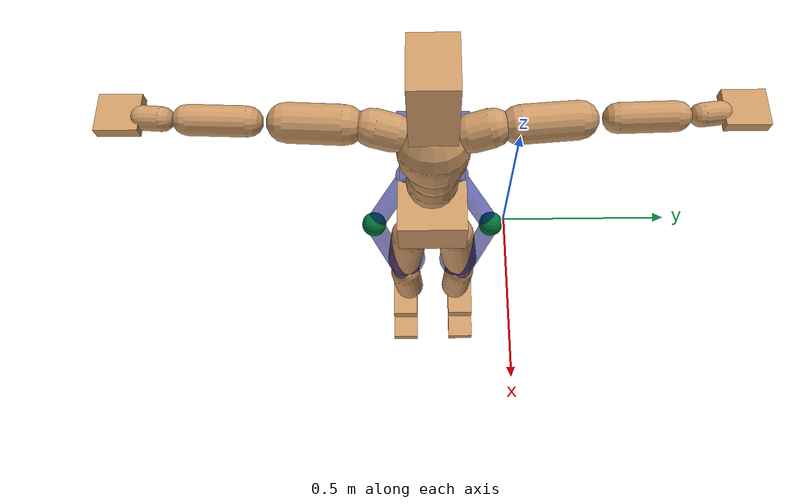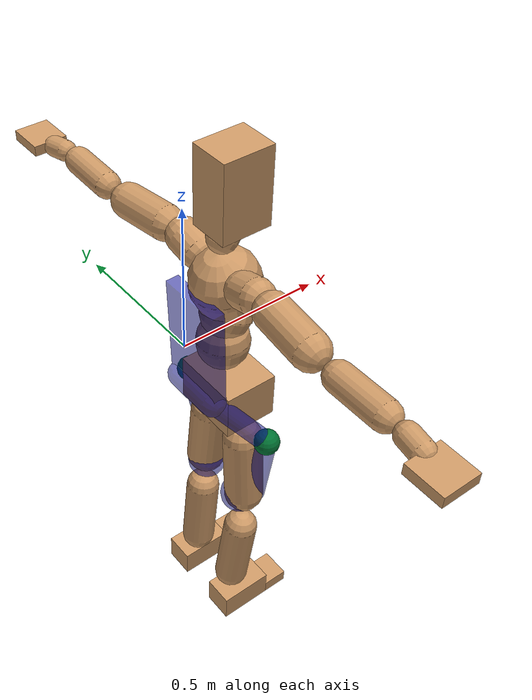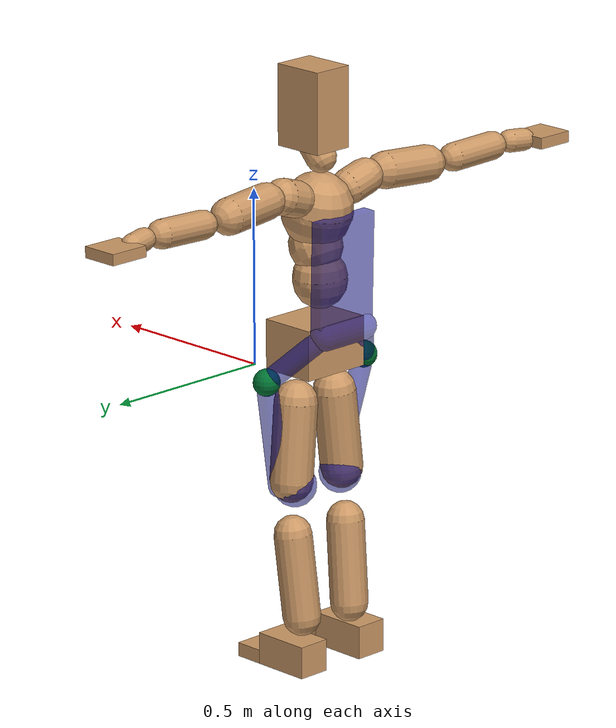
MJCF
<mujoco model="humanoid">
  <compiler coordinate="local" />
  <asset>
    <texture type="skybox" builtin="gradient" rgb1=".4 .5 .6" rgb2="0 0 0" width="100" height="100" />
    <texture builtin="flat" height="1278" mark="cross" markrgb="1 1 1" name="texgeom" random="0.01" rgb1="0.8 0.6 0.4" rgb2="0.8 0.6 0.4" type="cube" width="127" />
    <texture builtin="checker" height="100" name="texplane" rgb1="0 0 0" rgb2="0.8 0.8 0.8" type="2d" width="100" />
    <material name="MatPlane" reflectance="0.5" shininess="1" specular="1" texrepeat="60 60" texture="texplane" />
    <material name="geom" texture="texgeom" texuniform="true" />
  </asset>
  <worldbody>
    <light cutoff="100" diffuse="1 1 1" dir="-0 0 -1.3" directional="true" exponent="1" pos="0 0 1.3" specular=".1 .1 .1" />
    <body name="Pelvis" pos="-0.0018 -0.2233 0.0282">
      <geom type="box" pos="-0.0055 -0.0000 -0.0121" size="0.0830 0.1069 0.0722" quat="1.0000 0.0000 0.0000 0.0000" density="1000" conaffinity="1" condim="3" contype="7" margin="0.001" rgba="0.8 0.6 .4 1" />
      <body name="L_Hip" pos="-0.0068 0.0695 -0.0914">
        <joint name="L_Hip_x" type="hinge" pos="0 0 0" axis="1 0 0" stiffness="800" damping="80" armature="0.02" range="-180.0000 180.0000" limited="true" />
        <joint name="L_Hip_y" type="hinge" pos="0 0 0" axis="0 1 0" stiffness="800" damping="80" armature="0.02" range="-180.0000 180.0000" limited="true" />
        <joint name="L_Hip_z" type="hinge" pos="0 0 0" axis="0 0 1" stiffness="800" damping="80" armature="0.02" range="-180.0000 180.0000" limited="true" />
        <geom type="capsule" contype="1" conaffinity="1" density="2040.816327" fromto="-0.0009 0.0069 -0.0750 -0.0036 0.0274 -0.3002" size="0.0615" condim="3" margin="0.001" rgba="0.8 0.6 .4 1" />
        <body name="L_Knee" pos="-0.0045 0.0343 -0.3752">
          <joint name="L_Knee_x" type="hinge" pos="0 0 0" axis="1 0 0" stiffness="800" damping="80" armature="0.02" range="-180.0000 180.0000" limited="true" />
          <joint name="L_Knee_y" type="hinge" pos="0 0 0" axis="0 1 0" stiffness="800" damping="80" armature="0.02" range="-180.0000 180.0000" limited="true" />
          <joint name="L_Knee_z" type="hinge" pos="0 0 0" axis="0 0 1" stiffness="800" damping="80" armature="0.02" range="-180.0000 180.0000" limited="true" />
          <geom type="capsule" contype="1" conaffinity="1" density="1234.567901" fromto="-0.0087 -0.0027 -0.0796 -0.0350 -0.0109 -0.3184" size="0.0541" condim="3" margin="0.001" rgba="0.8 0.6 .4 1" />
          <body name="L_Ankle" pos="-0.0437 -0.0136 -0.3980">
            <joint name="L_Ankle_x" type="hinge" pos="0 0 0" axis="1 0 0" stiffness="800" damping="80" armature="0.02" range="-180.0000 180.0000" limited="true" />
            <joint name="L_Ankle_y" type="hinge" pos="0 0 0" axis="0 1 0" stiffness="800" damping="80" armature="0.02" range="-180.0000 180.0000" limited="true" />
            <joint name="L_Ankle_z" type="hinge" pos="0 0 0" axis="0 0 1" stiffness="800" damping="80" armature="0.02" range="-180.0000 180.0000" limited="true" />
            <geom type="box" pos="0.0242 0.0233 -0.0239" size="0.0850 0.0483 0.0464" quat="1.0000 0.0000 0.0000 0.0000" density="1000" conaffinity="1" condim="3" contype="7" margin="0.001" rgba="0.8 0.6 .4 1" />
            <body name="L_Toe" pos="0.1193 0.0264 -0.0558">
              <joint name="L_Toe_x" type="hinge" pos="0 0 0" axis="1 0 0" stiffness="500" damping="50" armature="0.02" range="-5.0000 5.0000" limited="true" />
              <joint name="L_Toe_y" type="hinge" pos="0 0 0" axis="0 1 0" stiffness="500" damping="50" armature="0.02" range="-5.0000 5.0000" limited="true" />
              <joint name="L_Toe_z" type="hinge" pos="0 0 0" axis="0 0 1" stiffness="500" damping="50" armature="0.02" range="-5.0000 5.0000" limited="true" />
              <geom type="box" pos="0.0248 -0.0030 0.0055" size="0.0496 0.0478 0.0200" quat="1.0000 0.0000 0.0000 0.0000" density="1000" conaffinity="1" condim="3" contype="7" margin="0.001" rgba="0.8 0.6 .4 1" />
            </body>
          </body>
        </body>
        <geom name="left_hip_motor" type="sphere" size="0.0385" pos="-0.000469 0.118289 0.005255" mass="0.53" contype="0" conaffinity="0" rgba="0.0 0.45 0.2 1" />
        <geom name="left_thigh_box" type="capsule" fromto="0.002551 0.111331 -0.023770 0.033895 0.039115 -0.325029" size="0.030" mass="0.1977" contype="0" conaffinity="0" rgba="0.0 0.0 0.55 0.55" />
        <geom name="left_hip_ring" type="sphere" pos="-0.007284 0.017379 -0.315218" size="0.061500" mass="0.0923" contype="0" conaffinity="0" rgba="0.0 0.0 0.55 0.55" />
      </body>
      <body name="R_Hip" pos="-0.0043 -0.0677 -0.0905">
        <joint name="R_Hip_x" type="hinge" pos="0 0 0" axis="1 0 0" stiffness="800" damping="80" armature="0.02" range="-180.0000 180.0000" limited="true" />
        <joint name="R_Hip_y" type="hinge" pos="0 0 0" axis="0 1 0" stiffness="800" damping="80" armature="0.02" range="-180.0000 180.0000" limited="true" />
        <joint name="R_Hip_z" type="hinge" pos="0 0 0" axis="0 0 1" stiffness="800" damping="80" armature="0.02" range="-180.0000 180.0000" limited="true" />
        <geom type="capsule" contype="1" conaffinity="1" density="2040.816327" fromto="-0.0018 -0.0077 -0.0765 -0.0071 -0.0306 -0.3061" size="0.0606" condim="3" margin="0.001" rgba="0.8 0.6 .4 1" />
        <body name="R_Knee" pos="-0.0089 -0.0383 -0.3826">
          <joint name="R_Knee_x" type="hinge" pos="0 0 0" axis="1 0 0" stiffness="800" damping="80" armature="0.02" range="-180.0000 180.0000" limited="true" />
          <joint name="R_Knee_y" type="hinge" pos="0 0 0" axis="0 1 0" stiffness="800" damping="80" armature="0.02" range="-180.0000 180.0000" limited="true" />
          <joint name="R_Knee_z" type="hinge" pos="0 0 0" axis="0 0 1" stiffness="800" damping="80" armature="0.02" range="-180.0000 180.0000" limited="true" />
          <geom type="capsule" contype="1" conaffinity="1" density="1234.567901" fromto="-0.0085 0.0032 -0.0797 -0.0338 0.0126 -0.3187" size="0.0541" condim="3" margin="0.001" rgba="0.8 0.6 .4 1" />
          <body name="R_Ankle" pos="-0.0423 0.0158 -0.3984">
            <joint name="R_Ankle_x" type="hinge" pos="0 0 0" axis="1 0 0" stiffness="800" damping="80" armature="0.02" range="-180.0000 180.0000" limited="true" />
            <joint name="R_Ankle_y" type="hinge" pos="0 0 0" axis="0 1 0" stiffness="800" damping="80" armature="0.02" range="-180.0000 180.0000" limited="true" />
            <joint name="R_Ankle_z" type="hinge" pos="0 0 0" axis="0 0 1" stiffness="800" damping="80" armature="0.02" range="-180.0000 180.0000" limited="true" />
            <geom type="box" pos="0.0256 -0.0212 -0.0174" size="0.0865 0.0483 0.0478" quat="1.0000 0.0000 0.0000 0.0000" density="1000" conaffinity="1" condim="3" contype="7" margin="0.001" rgba="0.8 0.6 .4 1" />
            <body name="R_Toe" pos="0.1233 -0.0254 -0.0481">
              <joint name="R_Toe_x" type="hinge" pos="0 0 0" axis="1 0 0" stiffness="500" damping="50" armature="0.02" range="-5.0000 5.0000" limited="true" />
              <joint name="R_Toe_y" type="hinge" pos="0 0 0" axis="0 1 0" stiffness="500" damping="50" armature="0.02" range="-5.0000 5.0000" limited="true" />
              <joint name="R_Toe_z" type="hinge" pos="0 0 0" axis="0 0 1" stiffness="500" damping="50" armature="0.02" range="-5.0000 5.0000" limited="true" />
              <geom type="box" pos="0.0227 0.0042 0.0045" size="0.0493 0.0479 0.0216" quat="1.0000 0.0000 0.0000 0.0000" density="1000" conaffinity="1" condim="3" contype="7" margin="0.001" rgba="0.8 0.6 .4 1" />
            </body>
          </body>
        </body>
        <geom name="right_hip_motor" type="sphere" size="0.0385" pos="-0.005199 -0.119211 0.003827" mass="0.53" contype="0" conaffinity="0" rgba="0.0 0.45 0.2 1" />
        <geom name="right_thigh_box" type="capsule" fromto="-0.002132 -0.112377 -0.025223 0.029619 -0.041620 -0.325993" size="0.030" mass="0.1977" contype="0" conaffinity="0" rgba="0.0 0.0 0.55 0.55" />
        <geom name="right_hip_ring" type="sphere" pos="-0.013104 -0.018825 -0.316393" size="0.060600" mass="0.0923" contype="0" conaffinity="0" rgba="0.0 0.0 0.55 0.55" />
      </body>
      <body name="Torso" pos="-0.0267 -0.0025 0.1090">
        <joint name="Torso_x" type="hinge" pos="0 0 0" axis="1 0 0" stiffness="1000" damping="100" armature="0.02" range="-180.0000 180.0000" limited="true" />
        <joint name="Torso_y" type="hinge" pos="0 0 0" axis="0 1 0" stiffness="1000" damping="100" armature="0.02" range="-180.0000 180.0000" limited="true" />
        <joint name="Torso_z" type="hinge" pos="0 0 0" axis="0 0 1" stiffness="1000" damping="100" armature="0.02" range="-180.0000 180.0000" limited="true" />
        <geom type="capsule" contype="1" conaffinity="1" density="2040.816327" fromto="0.0005 0.0025 0.0608 0.0006 0.0030 0.0743" size="0.0769" condim="3" margin="0.001" rgba="0.8 0.6 .4 1" />
        <body name="Spine" pos="0.0011 0.0055 0.1352">
          <joint name="Spine_x" type="hinge" pos="0 0 0" axis="1 0 0" stiffness="1000" damping="100" armature="0.02" range="-180.0000 180.0000" limited="true" />
          <joint name="Spine_y" type="hinge" pos="0 0 0" axis="0 1 0" stiffness="1000" damping="100" armature="0.02" range="-180.0000 180.0000" limited="true" />
          <joint name="Spine_z" type="hinge" pos="0 0 0" axis="0 0 1" stiffness="1000" damping="100" armature="0.02" range="-180.0000 180.0000" limited="true" />
          <geom type="capsule" contype="1" conaffinity="1" density="2040.816327" fromto="0.0114 0.0007 0.0238 0.0140 0.0008 0.0291" size="0.0755" condim="3" margin="0.001" rgba="0.8 0.6 .4 1" />
          <body name="Chest" pos="0.0254 0.0015 0.0529">
            <joint name="Chest_x" type="hinge" pos="0 0 0" axis="1 0 0" stiffness="1000" damping="100" armature="0.02" range="-180.0000 180.0000" limited="true" />
            <joint name="Chest_y" type="hinge" pos="0 0 0" axis="0 1 0" stiffness="1000" damping="100" armature="0.02" range="-180.0000 180.0000" limited="true" />
            <joint name="Chest_z" type="hinge" pos="0 0 0" axis="0 0 1" stiffness="1000" damping="100" armature="0.02" range="-180.0000 180.0000" limited="true" />
            <geom type="capsule" contype="1" conaffinity="1" density="2040.816327" fromto="-0.0173 -0.0009 0.0682 -0.0212 -0.0010 0.0833" size="0.1002" condim="3" margin="0.001" rgba="0.8 0.6 .4 1" />
            <body name="Neck" pos="-0.0429 -0.0028 0.2139">
              <joint name="Neck_x" type="hinge" pos="0 0 0" axis="1 0 0" stiffness="500" damping="50" armature="0.02" range="-180.0000 180.0000" limited="true" />
              <joint name="Neck_y" type="hinge" pos="0 0 0" axis="0 1 0" stiffness="500" damping="50" armature="0.02" range="-180.0000 180.0000" limited="true" />
              <joint name="Neck_z" type="hinge" pos="0 0 0" axis="0 0 1" stiffness="500" damping="50" armature="0.02" range="-180.0000 180.0000" limited="true" />
              <geom type="capsule" contype="1" conaffinity="1" density="1000" fromto="0.0103 0.0010 0.0130 0.0411 0.0041 0.0520" size="0.0436" condim="3" margin="0.001" rgba="0.8 0.6 .4 1" />
              <body name="Head" pos="0.0513 0.0052 0.0650">
                <joint name="Head_x" type="hinge" pos="0 0 0" axis="1 0 0" stiffness="500" damping="50" armature="0.02" range="-180.0000 180.0000" limited="true" />
                <joint name="Head_y" type="hinge" pos="0 0 0" axis="0 1 0" stiffness="500" damping="50" armature="0.02" range="-180.0000 180.0000" limited="true" />
                <joint name="Head_z" type="hinge" pos="0 0 0" axis="0 0 1" stiffness="500" damping="50" armature="0.02" range="-180.0000 180.0000" limited="true" />
                <geom type="box" pos="-0.0116 -0.0042 0.0876" size="0.0760 0.0606 0.1154" quat="1.0000 0.0000 0.0000 0.0000" density="1000" conaffinity="1" condim="3" contype="7" margin="0.001" rgba="0.8 0.6 .4 1" />
              </body>
            </body>
            <body name="L_Thorax" pos="-0.0341 0.0788 0.1217">
              <joint name="L_Thorax_x" type="hinge" pos="0 0 0" axis="1 0 0" stiffness="500" damping="50" armature="0.02" range="-180.0000 180.0000" limited="true" />
              <joint name="L_Thorax_y" type="hinge" pos="0 0 0" axis="0 1 0" stiffness="500" damping="50" armature="0.02" range="-180.0000 180.0000" limited="true" />
              <joint name="L_Thorax_z" type="hinge" pos="0 0 0" axis="0 0 1" stiffness="500" damping="50" armature="0.02" range="-180.0000 180.0000" limited="true" />
              <geom type="capsule" contype="1" conaffinity="1" density="1000" fromto="-0.0018 0.0182 0.0061 -0.0071 0.0728 0.0244" size="0.0521" condim="3" margin="0.001" rgba="0.8 0.6 .4 1" />
              <body name="L_Shoulder" pos="-0.0089 0.0910 0.0305">
                <joint name="L_Shoulder_x" type="hinge" pos="0 0 0" axis="1 0 0" stiffness="500" damping="50" armature="0.02" range="-180.0000 180.0000" limited="true" />
                <joint name="L_Shoulder_y" type="hinge" pos="0 0 0" axis="0 1 0" stiffness="500" damping="50" armature="0.02" range="-180.0000 180.0000" limited="true" />
                <joint name="L_Shoulder_z" type="hinge" pos="0 0 0" axis="0 0 1" stiffness="500" damping="50" armature="0.02" range="-180.0000 180.0000" limited="true" />
                <geom type="capsule" contype="1" conaffinity="1" density="1000" fromto="-0.0055 0.0519 -0.0026 -0.0220 0.2077 -0.0102" size="0.0517" condim="3" margin="0.001" rgba="0.8 0.6 .4 1" />
                <body name="L_Elbow" pos="-0.0275 0.2596 -0.0128">
                  <joint name="L_Elbow_x" type="hinge" pos="0 0 0" axis="1 0 0" stiffness="500" damping="50" armature="0.02" range="-180.0000 180.0000" limited="true" />
                  <joint name="L_Elbow_y" type="hinge" pos="0 0 0" axis="0 1 0" stiffness="500" damping="50" armature="0.02" range="-180.0000 180.0000" limited="true" />
                  <joint name="L_Elbow_z" type="hinge" pos="0 0 0" axis="0 0 1" stiffness="500" damping="50" armature="0.02" range="-180.0000 180.0000" limited="true" />
                  <geom type="capsule" contype="1" conaffinity="1" density="1000" fromto="-0.0002 0.0498 0.0018 -0.0009 0.1994 0.0072" size="0.0405" condim="3" margin="0.001" rgba="0.8 0.6 .4 1" />
                  <body name="L_Wrist" pos="-0.0012 0.2492 0.0090">
                    <joint name="L_Wrist_x" type="hinge" pos="0 0 0" axis="1 0 0" stiffness="300" damping="30" armature="0.02" range="-180.0000 180.0000" limited="true" />
                    <joint name="L_Wrist_y" type="hinge" pos="0 0 0" axis="0 1 0" stiffness="300" damping="30" armature="0.02" range="-180.0000 180.0000" limited="true" />
                    <joint name="L_Wrist_z" type="hinge" pos="0 0 0" axis="0 0 1" stiffness="300" damping="30" armature="0.02" range="-180.0000 180.0000" limited="true" />
                    <geom type="capsule" contype="1" conaffinity="1" density="1000" fromto="-0.0030 0.0168 -0.0016 -0.0120 0.0672 -0.0065" size="0.0318" condim="3" margin="0.001" rgba="0.8 0.6 .4 1" />
                    <body name="L_Hand" pos="-0.0149 0.0840 -0.0082">
                      <joint name="L_Hand_x" type="hinge" pos="0 0 0" axis="1 0 0" stiffness="300" damping="30" armature="0.02" range="-5.0000 5.0000" limited="true" />
                      <joint name="L_Hand_y" type="hinge" pos="0 0 0" axis="0 1 0" stiffness="300" damping="30" armature="0.02" range="-5.0000 5.0000" limited="true" />
                      <joint name="L_Hand_z" type="hinge" pos="0 0 0" axis="0 0 1" stiffness="300" damping="30" armature="0.02" range="-5.0000 5.0000" limited="true" />
                      <geom type="box" pos="-0.0058 0.0493 0.0010" size="0.0538 0.0585 0.0158" quat="1.0000 0.0000 0.0000 0.0000" density="1000" conaffinity="1" condim="3" contype="7" margin="0.001" rgba="0.8 0.6 .4 1" />
                    </body>
                  </body>
                </body>
              </body>
            </body>
            <body name="R_Thorax" pos="-0.0386 -0.0818 0.1188">
              <joint name="R_Thorax_x" type="hinge" pos="0 0 0" axis="1 0 0" stiffness="500" damping="50" armature="0.02" range="-180.0000 180.0000" limited="true" />
              <joint name="R_Thorax_y" type="hinge" pos="0 0 0" axis="0 1 0" stiffness="500" damping="50" armature="0.02" range="-180.0000 180.0000" limited="true" />
              <joint name="R_Thorax_z" type="hinge" pos="0 0 0" axis="0 0 1" stiffness="500" damping="50" armature="0.02" range="-180.0000 180.0000" limited="true" />
              <geom type="capsule" contype="1" conaffinity="1" density="1000" fromto="-0.0018 -0.0192 0.0065 -0.0073 -0.0768 0.0260" size="0.0511" condim="3" margin="0.001" rgba="0.8 0.6 .4 1" />
              <body name="R_Shoulder" pos="-0.0091 -0.0960 0.0326">
                <joint name="R_Shoulder_x" type="hinge" pos="0 0 0" axis="1 0 0" stiffness="500" damping="50" armature="0.02" range="-180.0000 180.0000" limited="true" />
                <joint name="R_Shoulder_y" type="hinge" pos="0 0 0" axis="0 1 0" stiffness="500" damping="50" armature="0.02" range="-180.0000 180.0000" limited="true" />
                <joint name="R_Shoulder_z" type="hinge" pos="0 0 0" axis="0 0 1" stiffness="500" damping="50" armature="0.02" range="-180.0000 180.0000" limited="true" />
                <geom type="capsule" contype="1" conaffinity="1" density="1000" fromto="-0.0043 -0.0507 -0.0027 -0.0171 -0.2030 -0.0107" size="0.0531" condim="3" margin="0.001" rgba="0.8 0.6 .4 1" />
                <body name="R_Elbow" pos="-0.0214 -0.2537 -0.0133">
                  <joint name="R_Elbow_x" type="hinge" pos="0 0 0" axis="1 0 0" stiffness="500" damping="50" armature="0.02" range="-180.0000 180.0000" limited="true" />
                  <joint name="R_Elbow_y" type="hinge" pos="0 0 0" axis="0 1 0" stiffness="500" damping="50" armature="0.02" range="-180.0000 180.0000" limited="true" />
                  <joint name="R_Elbow_z" type="hinge" pos="0 0 0" axis="0 0 1" stiffness="500" damping="50" armature="0.02" range="-180.0000 180.0000" limited="true" />
                  <geom type="capsule" contype="1" conaffinity="1" density="1000" fromto="-0.0011 -0.0511 0.0016 -0.0044 -0.2042 0.0062" size="0.0408" condim="3" margin="0.001" rgba="0.8 0.6 .4 1" />
                  <body name="R_Wrist" pos="-0.0056 -0.2553 0.0078">
                    <joint name="R_Wrist_x" type="hinge" pos="0 0 0" axis="1 0 0" stiffness="300" damping="30" armature="0.02" range="-180.0000 180.0000" limited="true" />
                    <joint name="R_Wrist_y" type="hinge" pos="0 0 0" axis="0 1 0" stiffness="300" damping="30" armature="0.02" range="-180.0000 180.0000" limited="true" />
                    <joint name="R_Wrist_z" type="hinge" pos="0 0 0" axis="0 0 1" stiffness="300" damping="30" armature="0.02" range="-180.0000 180.0000" limited="true" />
                    <geom type="capsule" contype="1" conaffinity="1" density="1000" fromto="-0.0021 -0.0169 -0.0012 -0.0083 -0.0677 -0.0049" size="0.0326" condim="3" margin="0.001" rgba="0.8 0.6 .4 1" />
                    <body name="R_Hand" pos="-0.0103 -0.0846 -0.0061">
                      <joint name="R_Hand_x" type="hinge" pos="0 0 0" axis="1 0 0" stiffness="300" damping="30" armature="0.02" range="-5.0000 5.0000" limited="true" />
                      <joint name="R_Hand_y" type="hinge" pos="0 0 0" axis="0 1 0" stiffness="300" damping="30" armature="0.02" range="-5.0000 5.0000" limited="true" />
                      <joint name="R_Hand_z" type="hinge" pos="0 0 0" axis="0 0 1" stiffness="300" damping="30" armature="0.02" range="-5.0000 5.0000" limited="true" />
                      <geom type="box" pos="-0.0079 -0.0462 -0.0009" size="0.0546 0.0569 0.0164" quat="1.0000 0.0000 0.0000 0.0000" density="1000" conaffinity="1" condim="3" contype="7" margin="0.001" rgba="0.8 0.6 .4 1" />
                    </body>
                  </body>
                </body>
              </body>
            </body>
          </body>
        </body>
      </body>
      <joint type="free" name="Pelvis" limited="false" actuatorfrclimited="false" />
      <geom name="waist_hip_bar" type="capsule" fromto="-0.1166 -0.074 0.0436 -0.1166 0.074 0.0436" size="0.040" mass="0.9389" contype="0" conaffinity="0" rgba="0.0 0.0 0.55 0.55" />
      <geom name="waist_hip_arm_l" type="capsule" fromto="-0.007269 0.187789 -0.086145 -0.116600 0.074000 0.043600" size="0.030" mass="0.3756" contype="0" conaffinity="0" rgba="0.0 0.0 0.55 0.55" />
      <geom name="waist_hip_arm_r" type="capsule" fromto="-0.009499 -0.186911 -0.086673 -0.116600 -0.074000 0.043600" size="0.030" mass="0.3756" contype="0" conaffinity="0" rgba="0.0 0.0 0.55 0.55" />
      <geom name="exo_main_col" type="box" size="0.020000 0.100000 0.160452" pos="-0.114674 0.002139 0.212481" quat="0.99987008 -0.00439565 -0.01550794 -0.00006818" mass="1.37" contype="0" conaffinity="0" rgba="0.0 0.0 0.55 0.55" />
    </body>
  </worldbody>
  <actuator>
    <motor name="L_Hip_x" joint="L_Hip_x" gear="500" />
    <motor name="L_Hip_y" joint="L_Hip_y" gear="500" />
    <motor name="L_Hip_z" joint="L_Hip_z" gear="500" />
    <motor name="L_Knee_x" joint="L_Knee_x" gear="500" />
    <motor name="L_Knee_y" joint="L_Knee_y" gear="500" />
    <motor name="L_Knee_z" joint="L_Knee_z" gear="500" />
    <motor name="L_Ankle_x" joint="L_Ankle_x" gear="500" />
    <motor name="L_Ankle_y" joint="L_Ankle_y" gear="500" />
    <motor name="L_Ankle_z" joint="L_Ankle_z" gear="500" />
    <motor name="L_Toe_x" joint="L_Toe_x" gear="500" />
    <motor name="L_Toe_y" joint="L_Toe_y" gear="500" />
    <motor name="L_Toe_z" joint="L_Toe_z" gear="500" />
    <motor name="R_Hip_x" joint="R_Hip_x" gear="500" />
    <motor name="R_Hip_y" joint="R_Hip_y" gear="500" />
    <motor name="R_Hip_z" joint="R_Hip_z" gear="500" />
    <motor name="R_Knee_x" joint="R_Knee_x" gear="500" />
    <motor name="R_Knee_y" joint="R_Knee_y" gear="500" />
    <motor name="R_Knee_z" joint="R_Knee_z" gear="500" />
    <motor name="R_Ankle_x" joint="R_Ankle_x" gear="500" />
    <motor name="R_Ankle_y" joint="R_Ankle_y" gear="500" />
    <motor name="R_Ankle_z" joint="R_Ankle_z" gear="500" />
    <motor name="R_Toe_x" joint="R_Toe_x" gear="500" />
    <motor name="R_Toe_y" joint="R_Toe_y" gear="500" />
    <motor name="R_Toe_z" joint="R_Toe_z" gear="500" />
    <motor name="Torso_x" joint="Torso_x" gear="500" />
    <motor name="Torso_y" joint="Torso_y" gear="500" />
    <motor name="Torso_z" joint="Torso_z" gear="500" />
    <motor name="Spine_x" joint="Spine_x" gear="500" />
    <motor name="Spine_y" joint="Spine_y" gear="500" />
    <motor name="Spine_z" joint="Spine_z" gear="500" />
    <motor name="Chest_x" joint="Chest_x" gear="500" />
    <motor name="Chest_y" joint="Chest_y" gear="500" />
    <motor name="Chest_z" joint="Chest_z" gear="500" />
    <motor name="Neck_x" joint="Neck_x" gear="500" />
    <motor name="Neck_y" joint="Neck_y" gear="500" />
    <motor name="Neck_z" joint="Neck_z" gear="500" />
    <motor name="Head_x" joint="Head_x" gear="500" />
    <motor name="Head_y" joint="Head_y" gear="500" />
    <motor name="Head_z" joint="Head_z" gear="500" />
    <motor name="L_Thorax_x" joint="L_Thorax_x" gear="500" />
    <motor name="L_Thorax_y" joint="L_Thorax_y" gear="500" />
    <motor name="L_Thorax_z" joint="L_Thorax_z" gear="500" />
    <motor name="L_Shoulder_x" joint="L_Shoulder_x" gear="500" />
    <motor name="L_Shoulder_y" joint="L_Shoulder_y" gear="500" />
    <motor name="L_Shoulder_z" joint="L_Shoulder_z" gear="500" />
    <motor name="L_Elbow_x" joint="L_Elbow_x" gear="500" />
    <motor name="L_Elbow_y" joint="L_Elbow_y" gear="500" />
    <motor name="L_Elbow_z" joint="L_Elbow_z" gear="500" />
    <motor name="L_Wrist_x" joint="L_Wrist_x" gear="500" />
    <motor name="L_Wrist_y" joint="L_Wrist_y" gear="500" />
    <motor name="L_Wrist_z" joint="L_Wrist_z" gear="500" />
    <motor name="L_Hand_x" joint="L_Hand_x" gear="500" />
    <motor name="L_Hand_y" joint="L_Hand_y" gear="500" />
    <motor name="L_Hand_z" joint="L_Hand_z" gear="500" />
    <motor name="R_Thorax_x" joint="R_Thorax_x" gear="500" />
    <motor name="R_Thorax_y" joint="R_Thorax_y" gear="500" />
    <motor name="R_Thorax_z" joint="R_Thorax_z" gear="500" />
    <motor name="R_Shoulder_x" joint="R_Shoulder_x" gear="500" />
    <motor name="R_Shoulder_y" joint="R_Shoulder_y" gear="500" />
    <motor name="R_Shoulder_z" joint="R_Shoulder_z" gear="500" />
    <motor name="R_Elbow_x" joint="R_Elbow_x" gear="500" />
    <motor name="R_Elbow_y" joint="R_Elbow_y" gear="500" />
    <motor name="R_Elbow_z" joint="R_Elbow_z" gear="500" />
    <motor name="R_Wrist_x" joint="R_Wrist_x" gear="500" />
    <motor name="R_Wrist_y" joint="R_Wrist_y" gear="500" />
    <motor name="R_Wrist_z" joint="R_Wrist_z" gear="500" />
    <motor name="R_Hand_x" joint="R_Hand_x" gear="500" />
    <motor name="R_Hand_y" joint="R_Hand_y" gear="500" />
    <motor name="R_Hand_z" joint="R_Hand_z" gear="500" />
    <motor name="exo_hip_l" joint="L_Hip_y" gear="23.7" ctrllimited="true" ctrlrange="-1 1" />
    <motor name="exo_hip_r" joint="R_Hip_y" gear="23.7" ctrllimited="true" ctrlrange="-1 1" />
  </actuator>
  <contact>
    <exclude body1="Torso" body2="Chest" />
    <exclude body1="Head" body2="Chest" />
    <exclude body1="R_Knee" body2="R_Toe" />
    <exclude body1="R_Knee" body2="L_Ankle" />
    <exclude body1="R_Knee" body2="L_Toe" />
    <exclude body1="L_Knee" body2="L_Toe" />
    <exclude body1="L_Knee" body2="R_Ankle" />
    <exclude body1="L_Knee" body2="R_Toe" />
    <exclude body1="L_Shoulder" body2="Chest" />
    <exclude body1="R_Shoulder" body2="Chest" />
  </contact>
  <sensor />
  <size njmax="700" nconmax="700" />
</mujoco>
